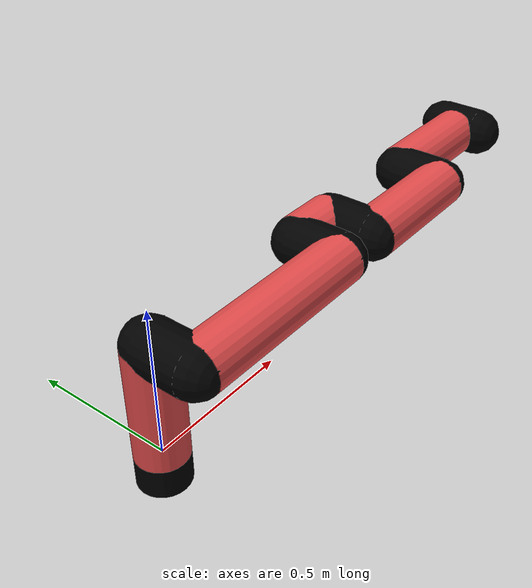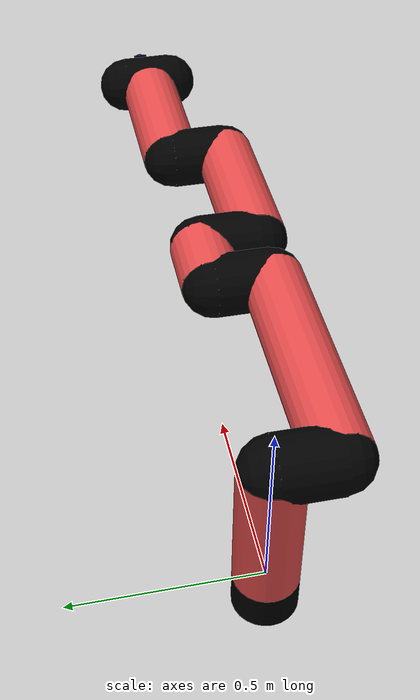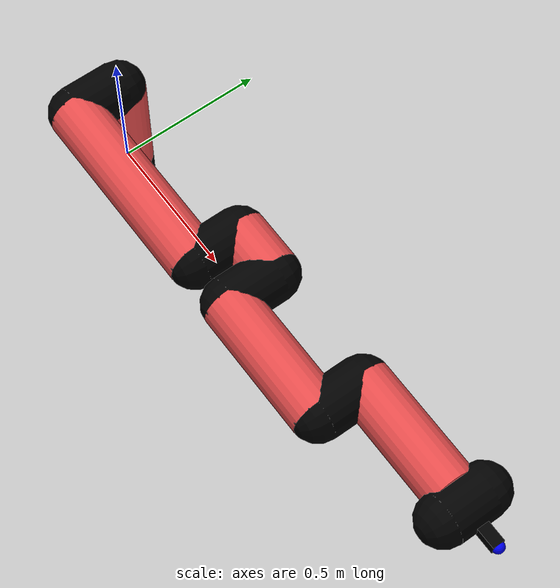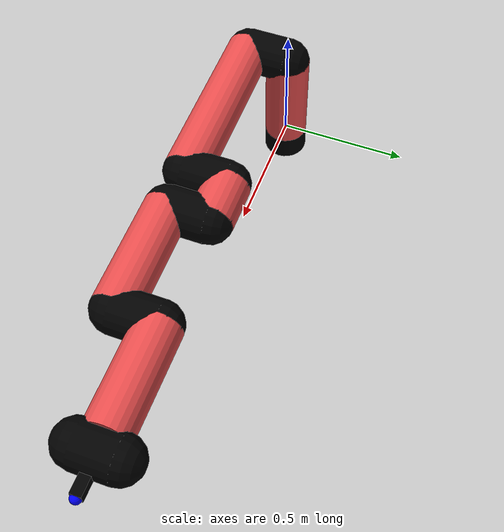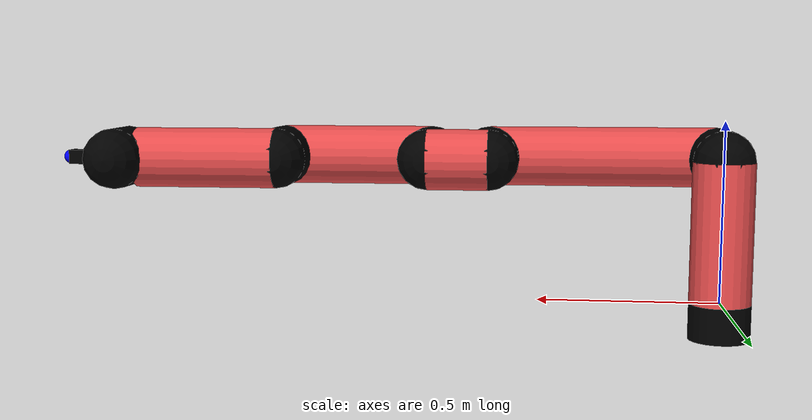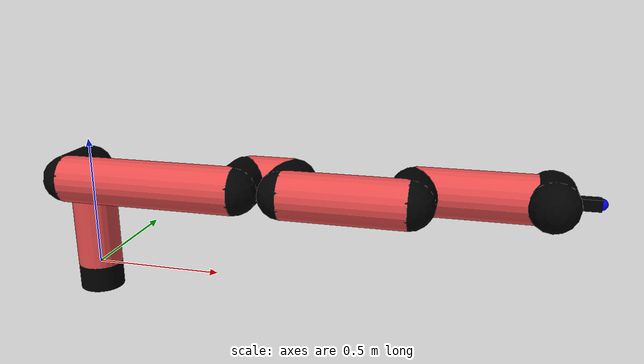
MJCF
<mujoco model="manipulator">
		<compiler angle="degree" coordinate="local" inertiafromgeom="auto" meshdir="meshes/"/>
		<option gravity="0 0 0" integrator="RK4" iterations="30" timestep="0.01"/>

		<default>
		<joint armature="1" limited="true" stiffness="10" damping="15" frictionloss="5.0"/>
		<geom conaffinity="1" condim="3" contype="1" friction=".5 .1 .1" margin="0.002"/>
		<motor ctrllimited="true"/>
		<position ctrllimited="true"/>
		</default>

		<asset>
		<texture builtin="gradient" height="100" rgb1="1.0 1.0 1.0" rgb2="1.0 1.0 1.0" type="skybox" width="100"/>
		<texture builtin="flat" height="32" name="arm_tex" rgb1="0.9 0.3 0.3" type="2d" width="32"/>
		<texture builtin="flat" height="32" name="gripper_tex" rgb1="0.0 0.0 0.0" type="cube" width="32"/>

		<material name="arm_mat" shininess="0.1" specular="0.1" texture="arm_tex"/>
		<material name="gripper_mat" shininess="1" specular="1" texture="gripper_tex"/>
		</asset>

		<worldbody>
		<light cutoff="45" diffuse=".8 .8 .8" dir="0 0.16 -1" directional="false" name="light" pos="0 -2.0 8.0" specular="0.3 0.3 0.3"/>

		<body name="base_link" pos="0 0 -0.1">
		<geom fromto="0 0 0 0 0 0.1" material="arm_mat" name="base_link" rgba="0.0 0.0 0.0 1" size="0.085" type="cylinder"/>
		</body>

		<body name="l1" pos="0 0 0">
<geom fromto="0 0 0 0 0 0.39" material="arm_mat" name="l1" rgba="0.9 0.3 0.3 1" size="0.085" type="cylinder"/>
<geom fromto="0 0 0.39 0 -0.16 0.39" material="arm_mat" name="l1_ex" rgba="0.0 0.0 0.0 1" size="0.085" type="capsule"/>
<joint axis="0 0 1" name="j1" pos="0 0 0" range="-90 90" damping="39.86" frictionloss="8.41"/>

<body name="l2" pos="0 -0.16 0.39">
<geom fromto="0 0 0 0.64 0 0" material="arm_mat" name="l2" rgba="0.9 0.3 0.3 1" size="0.085" type="cylinder"/>
<geom fromto="0.64 0 0 0.64 0.16 0" material="arm_mat" name="l2_ex" rgba="0.0 0.0 0.0 1" size="0.085" type="capsule"/>
<joint axis="0.0 1.0 0.0" name="j2" pos="0 0 0" range="-90 60" damping="26.34" frictionloss="10.71"/>

<body name="l3" pos="0.64 0.16 0">
<geom fromto="0 0 0 0.17 0 0" material="arm_mat" name="l3" rgba="0.9 0.3 0.3 1" size="0.085" type="cylinder"/>
<geom fromto="0.17 0 0 0.17 -0.16 0" material="arm_mat" name="l3_ex" rgba="0.0 0.0 0.0 1" size="0.085" type="capsule"/>
<joint axis="0.0 1.0 0.0" name="j3" pos="0 0 0" range="-30 60" damping="23.0" frictionloss="13.91"/>

<body name="l4" pos="0.17 -0.16 0">
<geom fromto="0 0 0 0.43 0 0" material="arm_mat" name="l4" rgba="0.9 0.3 0.3 1" size="0.085" type="cylinder"/>
<geom fromto="0.43 0 0 0.43 0.16 0" material="arm_mat" name="l4_ex" rgba="0.0 0.0 0.0 1" size="0.085" type="capsule"/>
<joint axis="0.0 1.0 0.0" name="j4" pos="0 0 0" range="-30 60" damping="28.73" frictionloss="7.77"/>

<body name="l5" pos="0.43 0.16 0">
<geom fromto="0 0 0 0.4 0 0" material="arm_mat" name="l5" rgba="0.9 0.3 0.3 1" size="0.085" type="cylinder"/>
<joint axis="0.0 1.0 0.0" name="j5" pos="0 0 0" range="-30 60" damping="15.37" frictionloss="11.7"/>

<body name="gripper" pos="0.4 0 0">
<geom fromto="0.05 -0.07 0 0.05 0.07 0" material="gripper_mat" name="gripper" rgba="0.0 0.0 0.0 1" size="0.085" type="capsule"/><joint axis="1 0 0" name="j6" pos="0 0 0" range="-90 90" damping="15" frictionloss="5.0"/><body name="finger" pos="0.1 0 0">
<geom fromto="0 0.0 0 0.1 0.0 0" material="gripper_mat" name="finger" rgba="0.0 0.0 0.0 1" size="0.020 0.06 0.06" type="box"/>
</body>
<site name="current" pos="0.2 0. 0.0" rgba="0. 0. 1.0 1" size="0.02" type="sphere"/>
</body>
</body>
</body>
</body>
</body>
</body>
</worldbody>
<actuator>
<motor ctrllimited="true" ctrlrange="-1.0 1.0" joint="j1" gear="89.21"/>
<motor ctrllimited="true" ctrlrange="-1.0 1.0" joint="j2" gear="57.9"/>
<motor ctrllimited="true" ctrlrange="-1.0 1.0" joint="j3" gear="85.16"/>
<motor ctrllimited="true" ctrlrange="-1.0 1.0" joint="j4" gear="102.96"/>
<motor ctrllimited="true" ctrlrange="-1.0 1.0" joint="j5" gear="47.33"/>
<motor ctrllimited="true" ctrlrange="-1.0 1.0" joint="j6" gear="80"/>
</actuator>
</mujoco>
